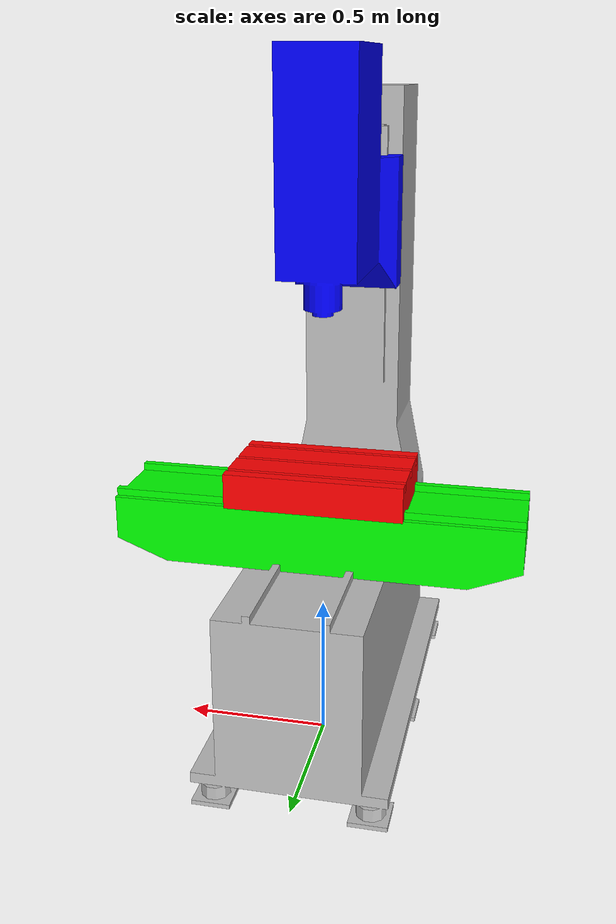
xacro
<?xml version="1.0"?>
<robot xmlns:xacro="http://www.ros.org/wiki/xacro" name="leadwellv20">

    <xacro:include filename="$(find leadwellv20)/urdf/links_joints.xacro"/>
    <xacro:include filename="$(find leadwellv20)/urdf/cnc_parameters.xacro"/>

    <link name="base_link"/>

    <joint name="base" type="fixed">
        <parent link="base_link"/>
        <child link="${link0_name}"/>
        <origin xyz="0.0 0.0 0.685" rpy="0.0 0.0 0.0"/>
    </joint>

    <xacro:link_macro name="${link0_name}"
        origin_xyz="0 0 0"
        origin_rpy="0 0 0"
        meshfile_visual="package://leadwellv20/meshes/frame.stl"
        color="gray"
        r="${188/255}"
        g="${188/255}"
        b="${188/255}"
        meshfile_col="package://leadwellv20/meshes/frame.stl"
        mass="1182"
        ixx="355.62" ixy="0.0" ixz="-55"
        iyy="376.16" iyz="0.0"
        izz="104.89"
        material="Gazebo/Black"
    />

    <xacro:joint_macro name="${joint1_name}"
        type="prismatic"
        parent_link="${link0_name}"
        child_link="${link1_name}"
        axis="0 0 1"
        lower="-0.51"
        upper="0.0"
        vel="50.0"
        effort="1000.0"
        origin_xyz="0 0 0.85"
        origin_rpy="0 0 0"
    />

    <xacro:link_macro name="${link1_name}"
        origin_xyz="0 0 0"
        origin_rpy="0 0 0"
        meshfile_visual="package://leadwellv20/meshes/zAxis.stl"
        color="blue"
        r="${0/255}"
        g="${0/255}"
        b="${255/255}"
        meshfile_col="package://leadwellv20/meshes/zAxis.stl"
        mass="438"
        ixx="38.2" ixy="0.265" ixz="0.749"
        iyy="35.28" iyz="-0.279"
        izz="16.23"
        material="Gazebo/Black"
    />

    <xacro:joint_macro name="${joint2_name}"
        type="prismatic"
        parent_link="${link0_name}"
        child_link="${link2_name}"
        axis="0 1 0"
        lower="-0.175"
        upper="0.175"
        vel="50.0"
        effort="1000.0"
        origin_xyz="0 0 0"
        origin_rpy="0 0 0"
    />

    <xacro:link_macro name="${link2_name}"
        origin_xyz="0 0 0"
        origin_rpy="0 0 0"
        meshfile_visual="package://leadwellv20/meshes/yAxis.stl"
        color="green"
        r="${0/255}"
        g="${255/255}"
        b="${0/255}"
        meshfile_col="package://leadwellv20/meshes/yAxis.stl"
        mass="50.2"
        ixx="0.72" ixy="0.0" ixz="0.0"
        iyy="2.31" iyz="0.0"
        izz="2.98"
        material="Gazebo/Black"
    />

    <xacro:joint_macro name="${joint3_name}"
        type="prismatic"
        parent_link="${link2_name}"
        child_link="${link3_name}"
        axis="1 0 0"
        lower="-0.255"
        upper="0.255"
        vel="50.0"
        effort="1000.0"
        origin_xyz="0 0 0.22"
        origin_rpy="0 0 0"
    />

    <xacro:link_macro name="${link3_name}"
        origin_xyz="0 0 0"
        origin_rpy="0 0 0"
        meshfile_visual="package://leadwellv20/meshes/xAxis.stl"
        color="red"
        r="${255/255}"
        g="${0/255}"
        b="${0/255}"
        meshfile_col="package://leadwellv20/meshes/xAxis.stl"
        mass="260"
        ixx="41.38" ixy="0.0" ixz="0.129"
        iyy="3.95" iyz="0.0"
        izz="43.92"
        material="Gazebo/Black"
    />

</robot>

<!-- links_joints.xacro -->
<robot xmlns:xacro="http://www.ros.org/wiki/xacro">

    <!-- links -->
    <xacro:macro name="link_macro" params="name origin_xyz origin_rpy meshfile_visual
    color r g b meshfile_col mass ixx ixy ixz iyy iyz izz material">
        <link name="${name}">
            <inertial>
                <origin xyz="${origin_xyz}" rpy="${origin_rpy}"/>
                <mass value="${mass}"/>
                <inertia ixx="${ixx}" ixy="${ixy}" ixz="${ixz}" iyy="${iyy}" iyz="${iyz}" izz="${izz}"/>
            </inertial>
            <visual>
                <origin xyz="${origin_xyz}" rpy="${origin_rpy}"/>
                <geometry>
                    <mesh filename="${meshfile_visual}"/>
                </geometry>
                <material name="${color}">
                    <color rgba="${r} ${g} ${b} 1.0"/>
                </material>
            </visual>
            <collision>
                <origin xyz="${origin_xyz}" rpy="${origin_rpy}"/>
                <geometry>
                    <mesh filename="${meshfile_col}"/>
                </geometry>
            </collision>
        </link>
        <gazebo reference="${name}">
            <material value="${material}"/>
            <turnGravityOff>true</turnGravityOff>
        </gazebo>
    </xacro:macro>

    <!-- joints without mimic -->
    <xacro:macro name="joint_macro" params="name type parent_link child_link axis lower upper vel effort origin_xyz origin_rpy">
        <joint name="${name}" type="${type}">
            <parent link="${parent_link}"/>
            <child link="${child_link}"/>
            <axis xyz="${axis}"/>
            <limit lower="${lower}" upper="${upper}" velocity="${vel}" effort="${effort}"/>
            <origin xyz="${origin_xyz}" rpy="${origin_rpy}"/>
        </joint>
        <transmission name="trans_${name}">
            <type>transmission_interface/SimpleTransmission</type>
            <joint name="${name}">
                <hardwareInterface>hardware_interface/PositionJointInterface</hardwareInterface>
            </joint>
            <actuator name="motor_${name}">
                <mechanicalReduction>1</mechanicalReduction>
                <hardwareInterface>hardware_interface/PositionJointInterface</hardwareInterface>
            </actuator>
        </transmission>
    </xacro:macro>

    <!-- joints with mimic -->
    <xacro:macro name="mimic_joint_macro" params="name type parent_link child_link axis lower upper vel effort origin_xyz origin_rpy
    mimic_joint m_multiplier m_offset">
        <joint name="${name}" type="${type}">
            <parent link="${parent_link}"/>
            <child link="${child_link}"/>
            <axis xyz="${axis}"/>
            <limit lower="${lower}" upper="${upper}" velocity="${vel}" effort="${effort}"/>
            <origin xyz="${origin_xyz}" rpy="${origin_rpy}"/>
            <mimic joint="${mimic_joint}" multiplier="${m_multiplier}" offset="${m_offset}"/>
        </joint>
        <transmission name="trans_${name}">
            <type>transmission_interface/SimpleTransmission</type>
            <joint name="${name}">
                <hardwareInterface>hardware_interface/PositionJointInterface</hardwareInterface>
            </joint>
            <actuator name="motor_${name}">
                <mechanicalReduction>1</mechanicalReduction>
                <hardwareInterface>hardware_interface/PositionJointInterface</hardwareInterface>
            </actuator>
        </transmission>
    </xacro:macro>

    <!-- noa -->
    <xacro:macro name="create_noa" params="name origin_rpy origin_xyz parent">
        <link name="${name}">
        </link>
        <joint name="Tool_${name}" type="fixed">
            <origin rpy="${origin_rpy}" xyz="${origin_xyz}"/>
            <parent link="${parent}"/>
            <child link="${name}"/>
        </joint>
    </xacro:macro>

</robot>

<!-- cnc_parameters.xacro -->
<robot xmlns:xacro="http://www.ros.org/wiki/xacro">

    <xacro:property name="link0_name" value="frame"/>
    <xacro:property name="link1_name" value="xAxis"/>
    <xacro:property name="link2_name" value="yAxis"/>
    <xacro:property name="link3_name" value="zAxis"/>

    <xacro:property name="joint1_name" value="zaxis"/>
    <xacro:property name="joint2_name" value="yaxis"/>
    <xacro:property name="joint3_name" value="xaxis"/>

</robot>
